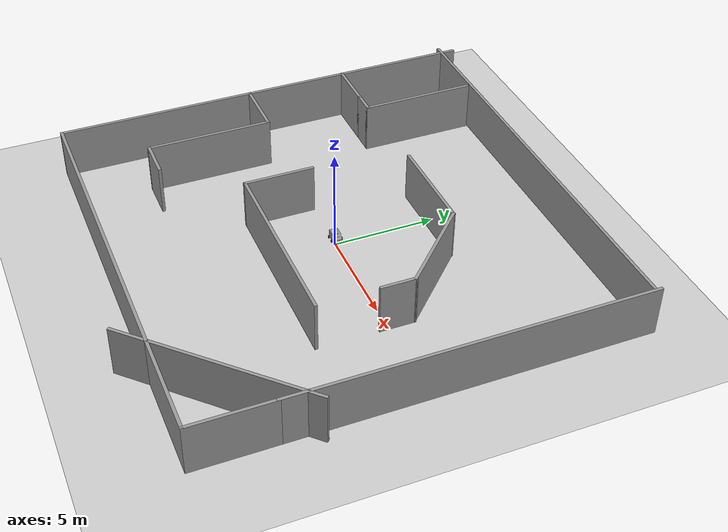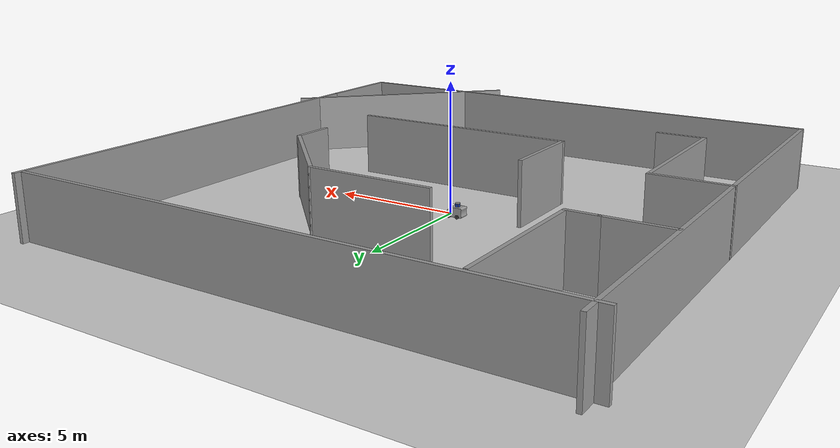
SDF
<sdf version="1.6">
 <world name="default">
  <light name="sun" type="directional">
   <pose>0 0 10 0 -0 0</pose>
   <diffuse>0.8 0.8 0.8 1</diffuse>
   <specular>0.2 0.2 0.2 1</specular>
   <attenuation>
    <range>1000</range>
    <constant>0.9</constant>
    <linear>0.01</linear>
    <quadratic>0.001</quadratic>
   </attenuation>
   <direction>-0.5 0.1 -0.9</direction>
  </light>
  <model name="ground_plane">
   <static>1</static>
   <link name="link">
    <collision name="collision">
     <geometry><plane><normal>0 0 1</normal><size>100 100</size></plane></geometry>
     <surface>
      <contact><collide_bitmask>65535</collide_bitmask></contact>
      <friction><ode><mu>100</mu><mu2>50</mu2></ode></friction>
     </surface>
    </collision>
    <visual name="visual">
     <cast_shadows>0</cast_shadows>
     <geometry><plane><normal>0 0 1</normal><size>100 100</size></plane></geometry>
     <material>
      <script><uri>file://media/materials/scripts/gazebo.material</uri><name>Gazebo/Grey</name></script>
     </material>
    </visual>
   </link>
  </model>
  <gravity>0 0 -9.8</gravity>
  <magnetic_field>6e-06 2.3e-05 -4.2e-05</magnetic_field>
  <atmosphere type="adiabatic"/>
  <physics name="default_physics" default="0" type="ode">
   <max_step_size>0.001</max_step_size>
   <real_time_factor>1</real_time_factor>
   <real_time_update_rate>1000</real_time_update_rate>
  </physics>
  <scene><ambient>0.4 0.4 0.4 1</ambient><background>0.7 0.7 0.7 1</background><shadows>1</shadows></scene>
  <audio><device>default</device></audio>
  <spherical_coordinates>
   <surface_model>EARTH_WGS84</surface_model>
   <latitude_deg>0</latitude_deg>
   <longitude_deg>0</longitude_deg>
   <elevation>0</elevation>
   <heading_deg>0</heading_deg>
  </spherical_coordinates>
  <model name="chetak_wc">
   <link name="base_link">
    <inertial>
     <pose>-0.36131 0.199977 0.277186 0 -0 0</pose>
     <mass>42.0188</mass>
     <inertia>
      <ixx>17.1146</ixx>
      <ixy>0.000253251</ixy>
      <ixz>0.679878</ixz>
      <iyy>28.5189</iyy>
      <iyz>2.14807e-05</iyz>
      <izz>29.9949</izz>
     </inertia>
    </inertial>
    <collision name="base_link_collision">
     <geometry>
      <mesh>
       <scale>0.001 0.001 0.001</scale>
       <uri>/home/sagar/catkin_ws/src/chetak_wc_description/meshes/base_link.stl</uri>
      </mesh>
     </geometry>
     <surface><friction><ode><mu>0.2</mu><mu2>0.2</mu2></ode></friction></surface>
    </collision>
    <collision name="base_link_fixed_joint_lump__uvc_rod__1_collision_1">
     <geometry>
      <mesh>
       <scale>0.001 0.001 0.001</scale>
       <uri>/home/sagar/catkin_ws/src/chetak_wc_description/meshes/uvc_rod__1.stl</uri>
      </mesh>
     </geometry>
     <surface><friction><ode><mu>0.2</mu><mu2>0.2</mu2></ode></friction></surface>
    </collision>
    <collision name="base_link_fixed_joint_lump__uvc_plate_1_collision_2">
     <geometry>
      <mesh>
       <scale>0.001 0.001 0.001</scale>
       <uri>/home/sagar/catkin_ws/src/chetak_wc_description/meshes/uvc_plate_1.stl</uri>
      </mesh>
     </geometry>
     <surface><friction><ode><mu>0.2</mu><mu2>0.2</mu2></ode></friction></surface>
    </collision>
    <collision name="base_link_fixed_joint_lump__lidar_1_collision_3">
     <geometry>
      <mesh>
       <scale>0.001 0.001 0.001</scale>
       <uri>/home/sagar/catkin_ws/src/chetak_wc_description/meshes/lidar_1.stl</uri>
      </mesh>
     </geometry>
     <surface><friction><ode><mu>0.2</mu><mu2>0.2</mu2></ode></friction></surface>
    </collision>
    <collision name="base_link_fixed_joint_lump__camera_1_collision_4">
     <geometry>
      <mesh>
       <scale>0.001 0.001 0.001</scale>
       <uri>/home/sagar/catkin_ws/src/chetak_wc_description/meshes/camera_1.stl</uri>
      </mesh>
     </geometry>
     <surface><friction><ode><mu>0.2</mu><mu2>0.2</mu2></ode></friction></surface>
    </collision>
    <collision name="base_link_fixed_joint_lump__name_1_collision_5">
     <geometry>
      <mesh>
       <scale>0.001 0.001 0.001</scale>
       <uri>/home/sagar/catkin_ws/src/chetak_wc_description/meshes/name_1.stl</uri>
      </mesh>
     </geometry>
     <surface><friction><ode><mu>0.2</mu><mu2>0.2</mu2></ode></friction></surface>
    </collision>
    <visual name="base_link_visual">
     <geometry>
      <mesh>
       <scale>0.001 0.001 0.001</scale>
       <uri>/home/sagar/catkin_ws/src/chetak_wc_description/meshes/base_link.stl</uri>
      </mesh>
     </geometry>
     <material>
      <script><name>Gazebo/Grey</name><uri>file://media/materials/scripts/gazebo.material</uri></script>
     </material>
    </visual>
    <visual name="base_link_fixed_joint_lump__uvc_rod__1_visual_1">
     <geometry>
      <mesh>
       <scale>0.001 0.001 0.001</scale>
       <uri>/home/sagar/catkin_ws/src/chetak_wc_description/meshes/uvc_rod__1.stl</uri>
      </mesh>
     </geometry>
     <material>
      <script><name>Gazebo/BlueGlow</name><uri>file://media/materials/scripts/gazebo.material</uri></script>
     </material>
    </visual>
    <visual name="base_link_fixed_joint_lump__uvc_plate_1_visual_2">
     <geometry>
      <mesh>
       <scale>0.001 0.001 0.001</scale>
       <uri>/home/sagar/catkin_ws/src/chetak_wc_description/meshes/uvc_plate_1.stl</uri>
      </mesh>
     </geometry>
     <material>
      <script><name>Gazebo/Grey</name><uri>file://media/materials/scripts/gazebo.material</uri></script>
     </material>
    </visual>
    <visual name="base_link_fixed_joint_lump__lidar_1_visual_3">
     <geometry>
      <mesh>
       <scale>0.001 0.001 0.001</scale>
       <uri>/home/sagar/catkin_ws/src/chetak_wc_description/meshes/lidar_1.stl</uri>
      </mesh>
     </geometry>
     <material>
      <script><name>Gazebo/White</name><uri>file://media/materials/scripts/gazebo.material</uri></script>
     </material>
    </visual>
    <visual name="base_link_fixed_joint_lump__camera_1_visual_4">
     <geometry>
      <mesh>
       <scale>0.001 0.001 0.001</scale>
       <uri>/home/sagar/catkin_ws/src/chetak_wc_description/meshes/camera_1.stl</uri>
      </mesh>
     </geometry>
     <material>
      <script><name>Gazebo/White</name><uri>file://media/materials/scripts/gazebo.material</uri></script>
     </material>
    </visual>
    <visual name="base_link_fixed_joint_lump__name_1_visual_5">
     <geometry>
      <mesh>
       <scale>0.001 0.001 0.001</scale>
       <uri>/home/sagar/catkin_ws/src/chetak_wc_description/meshes/name_1.stl</uri>
      </mesh>
     </geometry>
     <material>
      <script><name>Gazebo/White</name><uri>file://media/materials/scripts/gazebo.material</uri></script>
     </material>
    </visual>
    <sensor name="Lidar" type="gpu_ray">
     <visualize>1</visualize>
     <update_rate>40</update_rate>
     <ray>
      <scan>
       <horizontal>
        <samples>720</samples>
        <resolution>1</resolution>
        <min_angle>-1.5708</min_angle>
        <max_angle>1.5708</max_angle>
       </horizontal>
      </scan>
      <range><min>0.1</min><max>30</max><resolution>0.01</resolution></range>
      <noise><type>gaussian</type><mean>0</mean><stddev>0.01</stddev></noise>
     </ray>
     <plugin name="gazebo_ros_head_hokuyo_controller" filename="libgazebo_ros_gpu_laser.so">
      <topicName>/scan</topicName>
      <frameName>lidar_1</frameName>
      <robotNamespace>/</robotNamespace>
     </plugin>
     <pose>-0.015464 0.2 0.156443 0 -0 0</pose>
    </sensor>
    <self_collide>1</self_collide>
   </link>
   <link name="b_l_1">
    <pose>-0.525 0.48 0.075 0 -0 0</pose>
    <inertial>
     <pose>-0 -0.014828 0.000345 0 -0 0</pose>
     <mass>4.02291</mass>
     <inertia>
      <ixx>0.00623</ixx>
      <ixy>-0</ixy>
      <ixz>-0</ixz>
      <iyy>0.011756</iyy>
      <iyz>-3.4e-05</iyz>
      <izz>0.006161</izz>
     </inertia>
    </inertial>
    <collision name="b_l_1_collision">
     <pose>0.525 -0.48 -0.075 0 -0 0</pose>
     <geometry>
      <mesh>
       <scale>0.001 0.001 0.001</scale>
       <uri>/home/sagar/catkin_ws/src/chetak_wc_description/meshes/b_l_1.stl</uri>
      </mesh>
     </geometry>
     <surface><friction><ode><mu>0.2</mu><mu2>0.2</mu2></ode></friction></surface>
    </collision>
    <visual name="b_l_1_visual">
     <pose>0.525 -0.48 -0.075 0 -0 0</pose>
     <geometry>
      <mesh>
       <scale>0.001 0.001 0.001</scale>
       <uri>/home/sagar/catkin_ws/src/chetak_wc_description/meshes/b_l_1.stl</uri>
      </mesh>
     </geometry>
     <material>
      <script><name>Gazebo/DarkGrey</name><uri>file://media/materials/scripts/gazebo.material</uri></script>
     </material>
    </visual>
    <self_collide>1</self_collide>
   </link>
   <joint name="Rev10" type="revolute">
    <child>b_l_1</child>
    <parent>base_link</parent>
    <axis>
     <xyz>0 -1 0</xyz>
     <limit><lower>-1e+16</lower><upper>1e+16</upper></limit>
     <dynamics><spring_reference>0</spring_reference><spring_stiffness>0</spring_stiffness></dynamics>
     <use_parent_model_frame>1</use_parent_model_frame>
    </axis>
   </joint>
   <link name="b_r_1">
    <pose>-0.525 -0.08 0.075 0 -0 0</pose>
    <inertial>
     <pose>-0 0.014828 0.000345 0 -0 0</pose>
     <mass>4.02291</mass>
     <inertia>
      <ixx>0.00623</ixx>
      <ixy>0</ixy>
      <ixz>-0</ixz>
      <iyy>0.011756</iyy>
      <iyz>3.4e-05</iyz>
      <izz>0.006161</izz>
     </inertia>
    </inertial>
    <collision name="b_r_1_collision">
     <pose>0.525 0.08 -0.075 0 -0 0</pose>
     <geometry>
      <mesh>
       <scale>0.001 0.001 0.001</scale>
       <uri>/home/sagar/catkin_ws/src/chetak_wc_description/meshes/b_r_1.stl</uri>
      </mesh>
     </geometry>
     <surface><friction><ode><mu>0.2</mu><mu2>0.2</mu2></ode></friction></surface>
    </collision>
    <visual name="b_r_1_visual">
     <pose>0.525 0.08 -0.075 0 -0 0</pose>
     <geometry>
      <mesh>
       <scale>0.001 0.001 0.001</scale>
       <uri>/home/sagar/catkin_ws/src/chetak_wc_description/meshes/b_r_1.stl</uri>
      </mesh>
     </geometry>
     <material>
      <script><name>Gazebo/DarkGrey</name><uri>file://media/materials/scripts/gazebo.material</uri></script>
     </material>
    </visual>
    <self_collide>1</self_collide>
   </link>
   <joint name="Rev7" type="revolute">
    <child>b_r_1</child>
    <parent>base_link</parent>
    <axis>
     <xyz>0 -1 0</xyz>
     <limit><lower>-1e+16</lower><upper>1e+16</upper></limit>
     <dynamics><spring_reference>0</spring_reference><spring_stiffness>0</spring_stiffness></dynamics>
     <use_parent_model_frame>1</use_parent_model_frame>
    </axis>
   </joint>
   <link name="f_l_1">
    <pose>-0.175 0.48 0.075 0 -0 0</pose>
    <inertial>
     <pose>-0 -0.024855 0.000207 0 -0 0</pose>
     <mass>6.68635</mass>
     <inertia>
      <ixx>0.01123</ixx>
      <ixy>-0</ixy>
      <ixz>-0</ixz>
      <iyy>0.019546</iyy>
      <iyz>-4.8e-05</iyz>
      <izz>0.011161</izz>
     </inertia>
    </inertial>
    <collision name="f_l_1_collision">
     <pose>0.175 -0.48 -0.075 0 -0 0</pose>
     <geometry>
      <mesh>
       <scale>0.001 0.001 0.001</scale>
       <uri>/home/sagar/catkin_ws/src/chetak_wc_description/meshes/f_l_1.stl</uri>
      </mesh>
     </geometry>
     <surface><friction><ode><mu>0.2</mu><mu2>0.2</mu2></ode></friction></surface>
    </collision>
    <visual name="f_l_1_visual">
     <pose>0.175 -0.48 -0.075 0 -0 0</pose>
     <geometry>
      <mesh>
       <scale>0.001 0.001 0.001</scale>
       <uri>/home/sagar/catkin_ws/src/chetak_wc_description/meshes/f_l_1.stl</uri>
      </mesh>
     </geometry>
     <material>
      <script><name>Gazebo/DarkGrey</name><uri>file://media/materials/scripts/gazebo.material</uri></script>
     </material>
    </visual>
    <self_collide>1</self_collide>
   </link>
   <joint name="Rev8" type="revolute">
    <child>f_l_1</child>
    <parent>base_link</parent>
    <axis>
     <xyz>0 -1 0</xyz>
     <limit><lower>-1e+16</lower><upper>1e+16</upper></limit>
     <dynamics><spring_reference>0</spring_reference><spring_stiffness>0</spring_stiffness></dynamics>
     <use_parent_model_frame>1</use_parent_model_frame>
    </axis>
   </joint>
   <link name="f_r_1">
    <pose>-0.175 -0.08 0.075 0 -0 0</pose>
    <inertial>
     <pose>-0 0.024855 0.000207 0 -0 0</pose>
     <mass>6.68635</mass>
     <inertia>
      <ixx>0.01123</ixx>
      <ixy>0</ixy>
      <ixz>-0</ixz>
      <iyy>0.019546</iyy>
      <iyz>4.8e-05</iyz>
      <izz>0.011161</izz>
     </inertia>
    </inertial>
    <collision name="f_r_1_collision">
     <pose>0.175 0.08 -0.075 0 -0 0</pose>
     <geometry>
      <mesh>
       <scale>0.001 0.001 0.001</scale>
       <uri>/home/sagar/catkin_ws/src/chetak_wc_description/meshes/f_r_1.stl</uri>
      </mesh>
     </geometry>
     <surface><friction><ode><mu>0.2</mu><mu2>0.2</mu2></ode></friction></surface>
    </collision>
    <visual name="f_r_1_visual">
     <pose>0.175 0.08 -0.075 0 -0 0</pose>
     <geometry>
      <mesh>
       <scale>0.001 0.001 0.001</scale>
       <uri>/home/sagar/catkin_ws/src/chetak_wc_description/meshes/f_r_1.stl</uri>
      </mesh>
     </geometry>
     <material>
      <script><name>Gazebo/DarkGrey</name><uri>file://media/materials/scripts/gazebo.material</uri></script>
     </material>
    </visual>
    <self_collide>1</self_collide>
   </link>
   <joint name="Rev9" type="revolute">
    <child>f_r_1</child>
    <parent>base_link</parent>
    <axis>
     <xyz>0 -1 0</xyz>
     <limit><lower>-1e+16</lower><upper>1e+16</upper></limit>
     <dynamics><spring_reference>0</spring_reference><spring_stiffness>0</spring_stiffness></dynamics>
     <use_parent_model_frame>1</use_parent_model_frame>
    </axis>
   </joint>
   <static>0</static>
   <plugin name="differential_drive_controller" filename="libgazebo_ros_diff_drive.so">
    <legacyMode>0</legacyMode>
    <alwaysOn>1</alwaysOn>
    <updateRate>10</updateRate>
    <leftJoint>Rev8</leftJoint>
    <leftJoint>Rev10</leftJoint>
    <rightJoint>Rev7</rightJoint>
    <rightJoint>Rev9</rightJoint>
    <wheelSeparation>0.64</wheelSeparation>
    <wheelDiameter>0.3</wheelDiameter>
    <torque>0.9</torque>
    <commandTopic>cmd_vel</commandTopic>
    <odometryTopic>odom</odometryTopic>
    <odometryFrame>odom</odometryFrame>
    <robotBaseFrame>base_link</robotBaseFrame>
    <publishWheelTF>1</publishWheelTF>
    <publishWheelJointState>1</publishWheelJointState>
    <robotNamespace>/</robotNamespace>
   </plugin>
   <pose>-0.008257 -0.037118 -8.7e-05 -3.7e-05 9.8e-05 -0.015099</pose>
  </model>
  <model name="Untitled">
   <pose>0.329408 -0.349699 0 0 -0 0</pose>
   <link name="Wall_0">
    <collision name="Wall_0_Collision">
     <geometry><box><size>21.25 0.15 2.5</size></box></geometry>
     <pose>0 0 1.25 0 -0 0</pose>
    </collision>
    <visual name="Wall_0_Visual">
     <pose>0 0 1.25 0 -0 0</pose>
     <geometry><box><size>21.25 0.15 2.5</size></box></geometry>
     <material>
      <script><uri>file://media/materials/scripts/gazebo.material</uri><name>Gazebo/Grey</name></script>
      <ambient>1 1 1 1</ambient>
     </material>
     <meta><layer>0</layer></meta>
    </visual>
    <pose>-0.354251 10.6445 0 0 -0 0</pose>
   </link>
   <link name="Wall_11">
    <collision name="Wall_11_Collision">
     <geometry><box><size>9.25 0.15 2.5</size></box></geometry>
     <pose>0 0 1.25 0 -0 0</pose>
    </collision>
    <visual name="Wall_11_Visual">
     <pose>0 0 1.25 0 -0 0</pose>
     <geometry><box><size>9.25 0.15 2.5</size></box></geometry>
     <material>
      <script><uri>file://media/materials/scripts/gazebo.material</uri><name>Gazebo/Grey</name></script>
      <ambient>1 1 1 1</ambient>
     </material>
     <meta><layer>0</layer></meta>
    </visual>
    <pose>1.30919 -2.99877 0 0 -0 3.14159</pose>
   </link>
   <link name="Wall_12">
    <collision name="Wall_12_Collision">
     <geometry><box><size>3.5 0.15 2.5</size></box></geometry>
     <pose>0 0 1.25 0 -0 0</pose>
    </collision>
    <visual name="Wall_12_Visual">
     <pose>0 0 1.25 0 -0 0</pose>
     <geometry><box><size>3.5 0.15 2.5</size></box></geometry>
     <material>
      <script><uri>file://media/materials/scripts/gazebo.material</uri><name>Gazebo/Grey</name></script>
      <ambient>1 1 1 1</ambient>
     </material>
     <meta><layer>0</layer></meta>
    </visual>
    <pose>-3.24081 -1.32377 0 0 -0 1.5708</pose>
   </link>
   <link name="Wall_14">
    <collision name="Wall_14_Collision">
     <geometry><box><size>2.5 0.15 2.5</size></box></geometry>
     <pose>0 0 1.25 0 -0 0</pose>
    </collision>
    <visual name="Wall_14_Visual">
     <pose>0 0 1.25 0 -0 0</pose>
     <geometry><box><size>2.5 0.15 2.5</size></box></geometry>
     <material>
      <script><uri>file://media/materials/scripts/gazebo.material</uri><name>Gazebo/Grey</name></script>
      <ambient>1 1 1 1</ambient>
     </material>
     <meta><layer>0</layer></meta>
    </visual>
    <pose>-9.30099 4.83233 0 0 -0 0</pose>
   </link>
   <link name="Wall_15">
    <collision name="Wall_15_Collision">
     <geometry><box><size>1.25 0.15 2.5</size></box></geometry>
     <pose>0 0 1.25 0 -0 0</pose>
    </collision>
    <visual name="Wall_15_Visual">
     <pose>0 0 1.25 0 -0 0</pose>
     <geometry><box><size>1.25 0.15 2.5</size></box></geometry>
     <material>
      <script><uri>file://media/materials/scripts/gazebo.material</uri><name>Gazebo/Grey</name></script>
      <ambient>1 1 1 1</ambient>
     </material>
     <meta><layer>0</layer></meta>
    </visual>
    <pose>-7.57599 4.83233 0 0 -0 0</pose>
   </link>
   <link name="Wall_16">
    <collision name="Wall_16_Collision">
     <geometry><box><size>5.75 0.15 2.5</size></box></geometry>
     <pose>0 0 1.25 0 -0 0</pose>
    </collision>
    <visual name="Wall_16_Visual">
     <pose>0 0 1.25 0 -0 0</pose>
     <geometry><box><size>5.75 0.15 2.5</size></box></geometry>
     <material>
      <script><uri>file://media/materials/scripts/gazebo.material</uri><name>Gazebo/Grey</name></script>
      <ambient>1 1 1 1</ambient>
     </material>
     <meta><layer>0</layer></meta>
    </visual>
    <pose>-7.02599 7.63233 0 0 -0 1.5708</pose>
   </link>
   <link name="Wall_18">
    <collision name="Wall_18_Collision">
     <geometry><box><size>3 0.15 2.5</size></box></geometry>
     <pose>0 0 1.25 0 -0 0</pose>
    </collision>
    <visual name="Wall_18_Visual">
     <pose>0 0 1.25 0 -0 0</pose>
     <geometry><box><size>3 0.15 2.5</size></box></geometry>
     <material>
      <script><uri>file://media/materials/scripts/gazebo.material</uri><name>Gazebo/Grey</name></script>
      <ambient>1 1 1 1</ambient>
     </material>
     <meta><layer>0</layer></meta>
    </visual>
    <pose>-9.11217 -0.306828 0 0 -0 0</pose>
   </link>
   <link name="Wall_19">
    <collision name="Wall_19_Collision">
     <geometry><box><size>6.25 0.15 2.5</size></box></geometry>
     <pose>0 0 1.25 0 -0 0</pose>
    </collision>
    <visual name="Wall_19_Visual">
     <pose>0 0 1.25 0 -0 0</pose>
     <geometry><box><size>6.25 0.15 2.5</size></box></geometry>
     <material>
      <script><uri>file://media/materials/scripts/gazebo.material</uri><name>Gazebo/Grey</name></script>
      <ambient>1 1 1 1</ambient>
     </material>
     <meta><layer>0</layer></meta>
    </visual>
    <pose>-7.68717 -3.35683 0 0 -0 -1.5708</pose>
   </link>
   <link name="Wall_2">
    <collision name="Wall_2_Collision">
     <geometry><box><size>17.25 0.15 2.5</size></box></geometry>
     <pose>0 0 1.25 0 -0 0</pose>
    </collision>
    <visual name="Wall_2_Visual">
     <pose>0 0 1.25 0 -0 0</pose>
     <geometry><box><size>17.25 0.15 2.5</size></box></geometry>
     <material>
      <script><uri>file://media/materials/scripts/gazebo.material</uri><name>Gazebo/Grey</name></script>
      <ambient>1 1 1 1</ambient>
     </material>
     <meta><layer>0</layer></meta>
    </visual>
    <pose>10.3254 2.3392 0 0 -0 -1.5708</pose>
   </link>
   <link name="Wall_20">
    <collision name="Wall_20_Collision">
     <geometry><box><size>2 0.15 2.5</size></box></geometry>
     <pose>0 0 1.25 0 -0 0</pose>
    </collision>
    <visual name="Wall_20_Visual">
     <pose>0 0 1.25 0 -0 0</pose>
     <geometry><box><size>2 0.15 2.5</size></box></geometry>
     <material>
      <script><uri>file://media/materials/scripts/gazebo.material</uri><name>Gazebo/Grey</name></script>
      <ambient>1 1 1 1</ambient>
     </material>
     <meta><layer>0</layer></meta>
    </visual>
    <pose>-6.76217 -6.40683 0 0 -0 0</pose>
   </link>
   <link name="Wall_23">
    <collision name="Wall_23_Collision">
     <geometry><box><size>9.75 0.15 2.5</size></box></geometry>
     <pose>0 0 1.25 0 -0 0</pose>
    </collision>
    <visual name="Wall_23_Visual">
     <pose>0 0 1.25 0 -0 0</pose>
     <geometry><box><size>9.75 0.15 2.5</size></box></geometry>
     <material>
      <script><uri>file://media/materials/scripts/gazebo.material</uri><name>Gazebo/Grey</name></script>
      <ambient>1 1 1 1</ambient>
     </material>
     <meta><layer>0</layer></meta>
    </visual>
    <pose>7.47907 -7.86402 0 0 -0 0.785398</pose>
   </link>
   <link name="Wall_3">
    <collision name="Wall_3_Collision">
     <geometry><box><size>4 0.15 2.5</size></box></geometry>
     <pose>0 0 1.25 0 -0 0</pose>
    </collision>
    <visual name="Wall_3_Visual">
     <pose>0 0 1.25 0 -0 0</pose>
     <geometry><box><size>4 0.15 2.5</size></box></geometry>
     <material>
      <script><uri>file://media/materials/scripts/gazebo.material</uri><name>Gazebo/Grey</name></script>
      <ambient>1 1 1 1</ambient>
     </material>
     <meta><layer>0</layer></meta>
    </visual>
    <pose>10.3254 -8.1358 0 0 -0 -1.5708</pose>
   </link>
   <link name="Wall_4">
    <collision name="Wall_4_Collision">
     <geometry><box><size>21 0.15 2.5</size></box></geometry>
     <pose>0 0 1.25 0 -0 0</pose>
    </collision>
    <visual name="Wall_4_Visual">
     <pose>0 0 1.25 0 -0 0</pose>
     <geometry><box><size>21 0.15 2.5</size></box></geometry>
     <material>
      <script><uri>file://media/materials/scripts/gazebo.material</uri><name>Gazebo/Grey</name></script>
      <ambient>1 1 1 1</ambient>
     </material>
     <meta><layer>0</layer></meta>
    </visual>
    <pose>-0.099633 -10.0608 0 0 -0 3.14159</pose>
   </link>
   <link name="Wall_5">
    <collision name="Wall_5_Collision">
     <geometry><box><size>21.5 0.15 2.5</size></box></geometry>
     <pose>0 0 1.25 0 -0 0</pose>
    </collision>
    <visual name="Wall_5_Visual">
     <pose>0 0 1.25 0 -0 0</pose>
     <geometry><box><size>21.5 0.15 2.5</size></box></geometry>
     <material>
      <script><uri>file://media/materials/scripts/gazebo.material</uri><name>Gazebo/Grey</name></script>
      <ambient>1 1 1 1</ambient>
     </material>
     <meta><layer>0</layer></meta>
    </visual>
    <pose>-10.5246 0.614196 0 0 -0 1.5708</pose>
   </link>
   <link name="Wall_7">
    <collision name="Wall_7_Collision">
     <geometry><box><size>5 0.15 2.5</size></box></geometry>
     <pose>0 0 1.25 0 -0 0</pose>
    </collision>
    <visual name="Wall_7_Visual">
     <pose>0 0 1.25 0 -0 0</pose>
     <geometry><box><size>5 0.15 2.5</size></box></geometry>
     <material>
      <script><uri>file://media/materials/scripts/gazebo.material</uri><name>Gazebo/Grey</name></script>
      <ambient>1 1 1 1</ambient>
     </material>
     <meta><layer>0</layer></meta>
    </visual>
    <pose>0.024832 5.01587 0 0 -0 0</pose>
   </link>
   <link name="Wall_8">
    <collision name="Wall_8_Collision">
     <geometry><box><size>5 0.15 2.5</size></box></geometry>
     <pose>0 0 1.25 0 -0 0</pose>
    </collision>
    <visual name="Wall_8_Visual">
     <pose>0 0 1.25 0 -0 0</pose>
     <geometry><box><size>5 0.15 2.5</size></box></geometry>
     <material>
      <script><uri>file://media/materials/scripts/gazebo.material</uri><name>Gazebo/Grey</name></script>
      <ambient>1 1 1 1</ambient>
     </material>
     <meta><layer>0</layer></meta>
    </visual>
    <pose>4.16457 3.30114 0 0 -0 -0.785398</pose>
   </link>
   <link name="Wall_9">
    <collision name="Wall_9_Collision">
     <geometry><box><size>1.75 0.15 2.5</size></box></geometry>
     <pose>0 0 1.25 0 -0 0</pose>
    </collision>
    <visual name="Wall_9_Visual">
     <pose>0 0 1.25 0 -0 0</pose>
     <geometry><box><size>1.75 0.15 2.5</size></box></geometry>
     <material>
      <script><uri>file://media/materials/scripts/gazebo.material</uri><name>Gazebo/Grey</name></script>
      <ambient>1 1 1 1</ambient>
     </material>
     <meta><layer>0</layer></meta>
    </visual>
    <pose>5.8793 0.786404 0 0 -0 -1.5708</pose>
   </link>
   <static>1</static>
  </model>
 </world>
</sdf>
